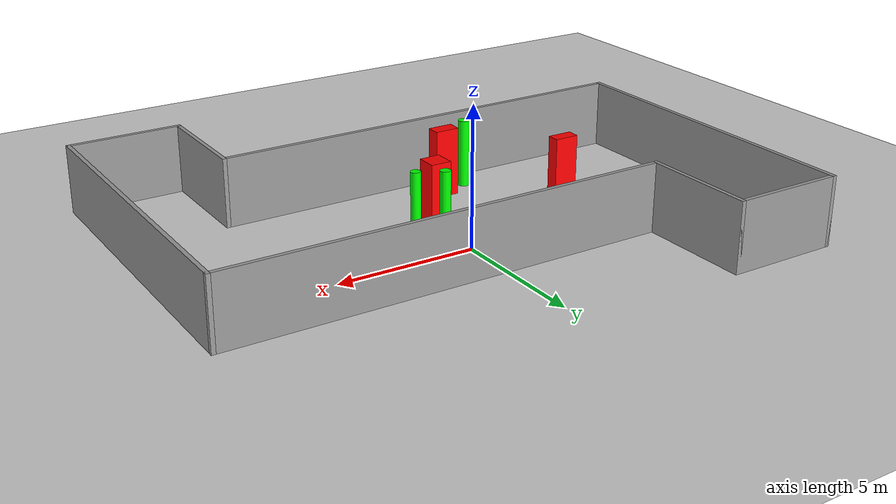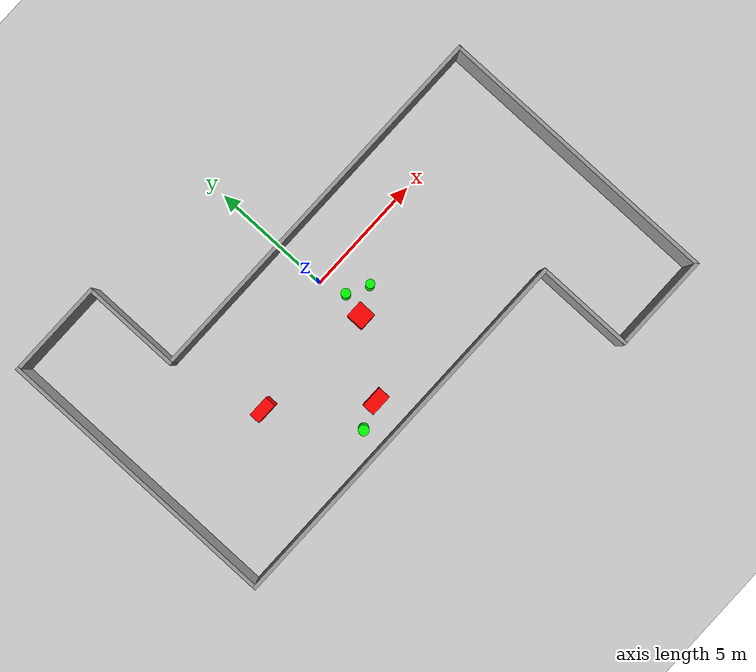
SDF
<sdf version="1.7">
 <world name="default">
  <light name="sun" type="directional">
   <pose>0 0 10 0 -0 0</pose>
   <diffuse>0.8 0.8 0.8 1</diffuse>
   <specular>0.2 0.2 0.2 1</specular>
   <attenuation>
    <range>1000</range>
    <constant>0.9</constant>
    <linear>0.01</linear>
    <quadratic>0.001</quadratic>
   </attenuation>
   <direction>-0.5 0.1 -0.9</direction>
   <spot><inner_angle>0</inner_angle><outer_angle>0</outer_angle><falloff>0</falloff></spot>
  </light>
  <model name="ground_plane">
   <static>1</static>
   <link name="link">
    <collision name="collision">
     <geometry><plane><normal>0 0 1</normal><size>100 100</size></plane></geometry>
     <surface>
      <contact><collide_bitmask>65535</collide_bitmask></contact>
      <friction><ode><mu>100</mu><mu2>50</mu2></ode></friction>
     </surface>
    </collision>
    <visual name="visual">
     <cast_shadows>0</cast_shadows>
     <geometry><plane><normal>0 0 1</normal><size>100 100</size></plane></geometry>
     <material>
      <script><uri>file://media/materials/scripts/gazebo.material</uri><name>Gazebo/Grey</name></script>
     </material>
    </visual>
   </link>
  </model>
  <gravity>0 0 -9.8</gravity>
  <magnetic_field>6e-06 2.3e-05 -4.2e-05</magnetic_field>
  <atmosphere type="adiabatic"/>
  <physics type="ode">
   <max_step_size>0.001</max_step_size>
   <real_time_factor>1</real_time_factor>
   <real_time_update_rate>1000</real_time_update_rate>
  </physics>
  <scene><ambient>0.4 0.4 0.4 1</ambient><background>0.7 0.7 0.7 1</background><shadows>1</shadows></scene>
  <spherical_coordinates>
   <surface_model>EARTH_WGS84</surface_model>
   <latitude_deg>0</latitude_deg>
   <longitude_deg>0</longitude_deg>
   <elevation>0</elevation>
   <heading_deg>0</heading_deg>
  </spherical_coordinates>
  <model name="my_base_walls">
   <link name="Wall_13">
    <collision name="Wall_13_Collision">
     <geometry><box><size>12.15 0.15 2.5</size></box></geometry>
     <pose>0 0 1.25 0 -0 0</pose>
    </collision>
    <visual name="Wall_13_Visual">
     <pose>0 0 1.25 0 -0 0</pose>
     <geometry><box><size>12.15 0.15 2.5</size></box></geometry>
     <material>
      <script><uri>file://media/materials/scripts/gazebo.material</uri><name>Gazebo/Grey</name></script>
      <ambient>1 1 1 1</ambient>
     </material>
     <meta><layer>0</layer></meta>
    </visual>
    <pose>10 -2 0 0 -0 1.5708</pose>
   </link>
   <link name="Wall_15">
    <collision name="Wall_15_Collision">
     <geometry><box><size>16.15 0.15 2.5</size></box></geometry>
     <pose>0 0 1.25 0 -0 0</pose>
    </collision>
    <visual name="Wall_15_Visual">
     <pose>0 0 1.25 0 -0 0</pose>
     <geometry><box><size>16.15 0.15 2.5</size></box></geometry>
     <material>
      <script><uri>file://media/materials/scripts/gazebo.material</uri><name>Gazebo/Grey</name></script>
      <ambient>1 1 1 1</ambient>
     </material>
     <meta><layer>0</layer></meta>
    </visual>
    <pose>2 4 0 0 -0 3.14159</pose>
   </link>
   <link name="Wall_17">
    <collision name="Wall_17_Collision">
     <geometry><box><size>4.15 0.15 2.5</size></box></geometry>
     <pose>0 0 1.25 0 -0 0</pose>
    </collision>
    <visual name="Wall_17_Visual">
     <pose>0 0 1.25 0 -0 0</pose>
     <geometry><box><size>4.15 0.15 2.5</size></box></geometry>
     <material>
      <script><uri>file://media/materials/scripts/gazebo.material</uri><name>Gazebo/Grey</name></script>
      <ambient>1 1 1 1</ambient>
     </material>
     <meta><layer>0</layer></meta>
    </visual>
    <pose>6 -6 0 0 -0 -1.5708</pose>
   </link>
   <link name="Wall_19">
    <collision name="Wall_19_Collision">
     <geometry><box><size>12.15 0.15 2.5</size></box></geometry>
     <pose>0 0 1.25 0 -0 0</pose>
    </collision>
    <visual name="Wall_19_Visual">
     <pose>0 0 1.25 0 -0 0</pose>
     <geometry><box><size>12.15 0.15 2.5</size></box></geometry>
     <material>
      <script><uri>file://media/materials/scripts/gazebo.material</uri><name>Gazebo/Grey</name></script>
      <ambient>1 1 1 1</ambient>
     </material>
     <meta><layer>0</layer></meta>
    </visual>
    <pose>-10 2 0 0 -0 1.5708</pose>
   </link>
   <link name="Wall_21">
    <collision name="Wall_21_Collision">
     <geometry><box><size>4.15 0.15 2.5</size></box></geometry>
     <pose>0 0 1.25 0 -0 0</pose>
    </collision>
    <visual name="Wall_21_Visual">
     <pose>0 0 1.25 0 -0 0</pose>
     <geometry><box><size>4.15 0.15 2.5</size></box></geometry>
     <material>
      <script><uri>file://media/materials/scripts/gazebo.material</uri><name>Gazebo/Grey</name></script>
      <ambient>1 1 1 1</ambient>
     </material>
     <meta><layer>0</layer></meta>
    </visual>
    <pose>-8 8 0 0 -0 0</pose>
   </link>
   <link name="Wall_23">
    <collision name="Wall_23_Collision">
     <geometry><box><size>4.15 0.15 2.5</size></box></geometry>
     <pose>0 0 1.25 0 -0 0</pose>
    </collision>
    <visual name="Wall_23_Visual">
     <pose>0 0 1.25 0 -0 0</pose>
     <geometry><box><size>4.15 0.15 2.5</size></box></geometry>
     <material>
      <script><uri>file://media/materials/scripts/gazebo.material</uri><name>Gazebo/Grey</name></script>
      <ambient>1 1 1 1</ambient>
     </material>
     <meta><layer>0</layer></meta>
    </visual>
    <pose>-6 6 0 0 -0 -1.5708</pose>
   </link>
   <link name="Wall_25">
    <collision name="Wall_25_Collision">
     <geometry><box><size>4.15 0.15 2.5</size></box></geometry>
     <pose>0 0 1.25 0 -0 0</pose>
    </collision>
    <visual name="Wall_25_Visual">
     <pose>0 0 1.25 0 -0 0</pose>
     <geometry><box><size>4.15 0.15 2.5</size></box></geometry>
     <material>
      <script><uri>file://media/materials/scripts/gazebo.material</uri><name>Gazebo/Grey</name></script>
      <ambient>1 1 1 1</ambient>
     </material>
     <meta><layer>0</layer></meta>
    </visual>
    <pose>8 -8 0 0 -0 0</pose>
   </link>
   <link name="Wall_9">
    <collision name="Wall_9_Collision">
     <geometry><box><size>16.15 0.15 2.5</size></box></geometry>
     <pose>0 0 1.25 0 -0 0</pose>
    </collision>
    <visual name="Wall_9_Visual">
     <pose>0 0 1.25 0 -0 0</pose>
     <geometry><box><size>16.15 0.15 2.5</size></box></geometry>
     <material>
      <script><uri>file://media/materials/scripts/gazebo.material</uri><name>Gazebo/Grey</name></script>
      <ambient>1 1 1 1</ambient>
     </material>
     <meta><layer>0</layer></meta>
    </visual>
    <pose>-2 -4 0 0 -0 3.14159</pose>
   </link>
   <static>1</static>
   <pose>-0 -2 0 0 -0 0</pose>
  </model>
  <model name="cylinder1">
   <static>1</static>
   <link name="link">
    <inertial>
     <mass>1</mass>
     <inertia><ixx>0.5</ixx><ixy>0</ixy><ixz>0</ixz><iyy>0.5</iyy><iyz>0</iyz><izz>1</izz></inertia>
    </inertial>
    <collision name="collision">
     <geometry><cylinder><radius>0.21138171536225853</radius><length>2.5</length></cylinder></geometry>
    </collision>
    <visual name="visual">
     <geometry><cylinder><radius>0.21138171536225853</radius><length>2.5</length></cylinder></geometry>
     <material>
      <ambient>0 1 0 1</ambient>
      <diffuse>0 1 0 1</diffuse>
      <specular>0.1 0.1 0.1 1</specular>
      <emissive>0 0 0 0</emissive>
     </material>
    </visual>
   </link>
   <pose>-2.9737636636895743 -5.03609150981081 1.25 0 0 0</pose>
  </model>
  <model name="cylinder2">
   <static>1</static>
   <link name="link">
    <inertial>
     <mass>1</mass>
     <inertia><ixx>0.5</ixx><ixy>0</ixy><ixz>0</ixz><iyy>0.5</iyy><iyz>0</iyz><izz>1</izz></inertia>
    </inertial>
    <collision name="collision">
     <geometry><cylinder><radius>0.17709376917895892</radius><length>2.5</length></cylinder></geometry>
    </collision>
    <visual name="visual">
     <geometry><cylinder><radius>0.17709376917895892</radius><length>2.5</length></cylinder></geometry>
     <material>
      <ambient>0 1 0 1</ambient>
      <diffuse>0 1 0 1</diffuse>
      <specular>0.1 0.1 0.1 1</specular>
      <emissive>0 0 0 0</emissive>
     </material>
    </visual>
   </link>
   <pose>1.2190750415572564 -1.522337349975281 1.25 0 0 0</pose>
  </model>
  <model name="cylinder3">
   <static>1</static>
   <link name="link">
    <inertial>
     <mass>1</mass>
     <inertia><ixx>0.5</ixx><ixy>0</ixy><ixz>0</ixz><iyy>0.5</iyy><iyz>0</iyz><izz>1</izz></inertia>
    </inertial>
    <collision name="collision">
     <geometry><cylinder><radius>0.18792973506874944</radius><length>2.5</length></cylinder></geometry>
    </collision>
    <visual name="visual">
     <geometry><cylinder><radius>0.18792973506874944</radius><length>2.5</length></cylinder></geometry>
     <material>
      <ambient>0 1 0 1</ambient>
      <diffuse>0 1 0 1</diffuse>
      <specular>0.1 0.1 0.1 1</specular>
      <emissive>0 0 0 0</emissive>
     </material>
    </visual>
   </link>
   <pose>0.34141771847010816 -1.0831854365148503 1.25 0 0 0</pose>
  </model>
  <model name="box1">
   <static>1</static>
   <link name="link">
    <inertial>
     <mass>1</mass>
     <inertia><ixx>0.083</ixx><ixy>0</ixy><ixz>0</ixz><iyy>0.083</iyy><iyz>0</iyz><izz>0.083</izz></inertia>
    </inertial>
    <collision name="collision">
     <geometry><box><size>0.8838621781627412 0.4494302655708723 2.5</size></box></geometry>
    </collision>
    <visual name="visual">
     <geometry><box><size>0.8838621781627412 0.4494302655708723 2.5</size></box></geometry>
     <material>
      <ambient>1 0 0 1</ambient>
      <diffuse>1 0 0 1</diffuse>
      <specular>0.1 0.1 0.1 1</specular>
      <emissive>0 0 0 0</emissive>
     </material>
    </visual>
    <sensor name="my_contact" type="contact">
     <contact><collision>box_collision</collision><topic>__default_topic__</topic></contact>
    </sensor>
   </link>
   <pose>-4.9697486001095275 -1.7366903680210664 1.25 0 0 0</pose>
  </model>
  <model name="box2">
   <static>1</static>
   <link name="link">
    <inertial>
     <mass>1</mass>
     <inertia><ixx>0.083</ixx><ixy>0</ixy><ixz>0</ixz><iyy>0.083</iyy><iyz>0</iyz><izz>0.083</izz></inertia>
    </inertial>
    <collision name="collision">
     <geometry><box><size>0.7309275205680608 0.7420427155790359 2.5</size></box></geometry>
    </collision>
    <visual name="visual">
     <geometry><box><size>0.7309275205680608 0.7420427155790359 2.5</size></box></geometry>
     <material>
      <ambient>1 0 0 1</ambient>
      <diffuse>1 0 0 1</diffuse>
      <specular>0.1 0.1 0.1 1</specular>
      <emissive>0 0 0 0</emissive>
     </material>
    </visual>
    <sensor name="my_contact" type="contact">
     <contact><collision>box_collision</collision><topic>__default_topic__</topic></contact>
    </sensor>
   </link>
   <pose>0.11652589487958043 -2.0594201889573416 1.25 0 0 0</pose>
  </model>
  <model name="box3">
   <static>1</static>
   <link name="link">
    <inertial>
     <mass>1</mass>
     <inertia><ixx>0.083</ixx><ixy>0</ixy><ixz>0</ixz><iyy>0.083</iyy><iyz>0</iyz><izz>0.083</izz></inertia>
    </inertial>
    <collision name="collision">
     <geometry><box><size>0.9049943484265908 0.5168957035607871 2.5</size></box></geometry>
    </collision>
    <visual name="visual">
     <geometry><box><size>0.9049943484265908 0.5168957035607871 2.5</size></box></geometry>
     <material>
      <ambient>1 0 0 1</ambient>
      <diffuse>1 0 0 1</diffuse>
      <specular>0.1 0.1 0.1 1</specular>
      <emissive>0 0 0 0</emissive>
     </material>
    </visual>
    <sensor name="my_contact" type="contact">
     <contact><collision>box_collision</collision><topic>__default_topic__</topic></contact>
    </sensor>
   </link>
   <pose>-1.861525553884685 -4.652724526209738 1.25 0 0 0</pose>
  </model>
 </world>
</sdf>
